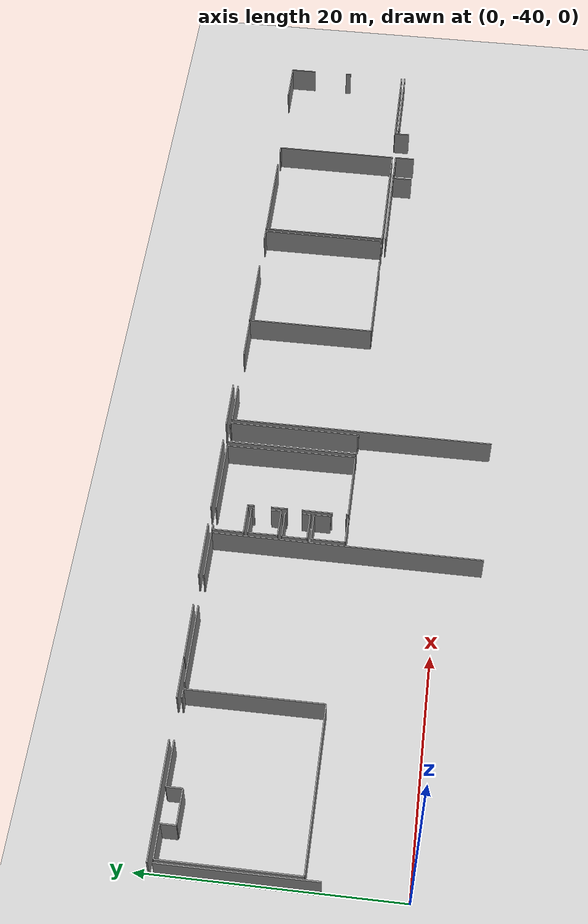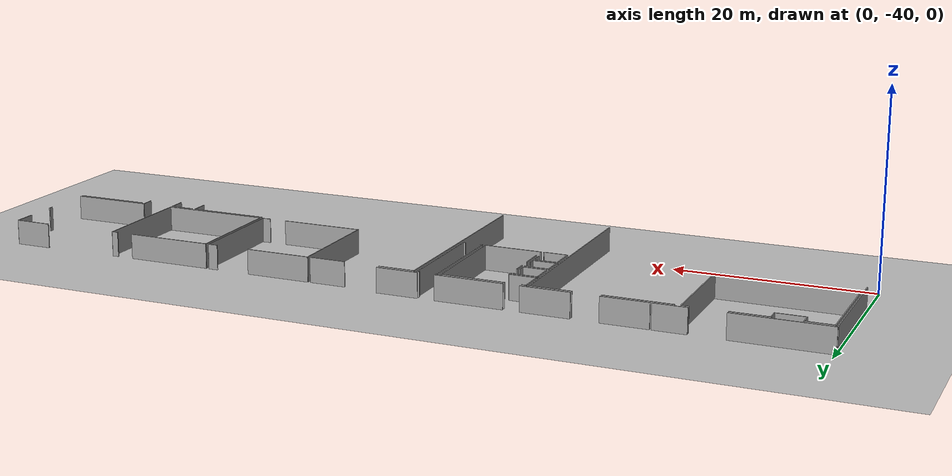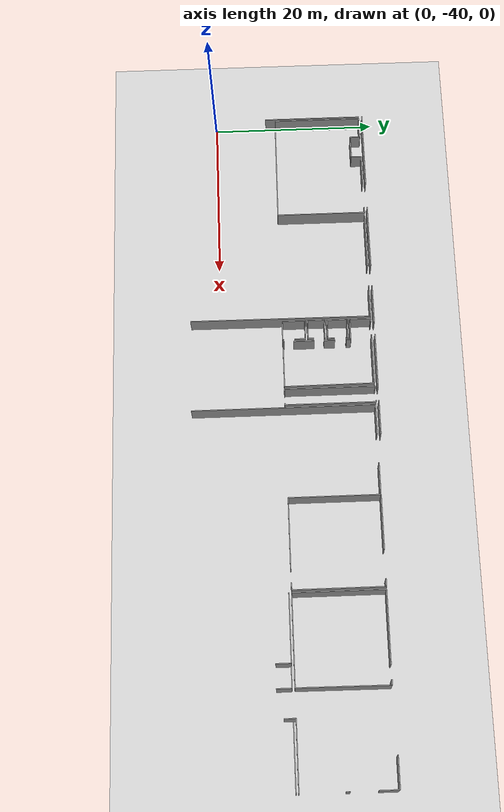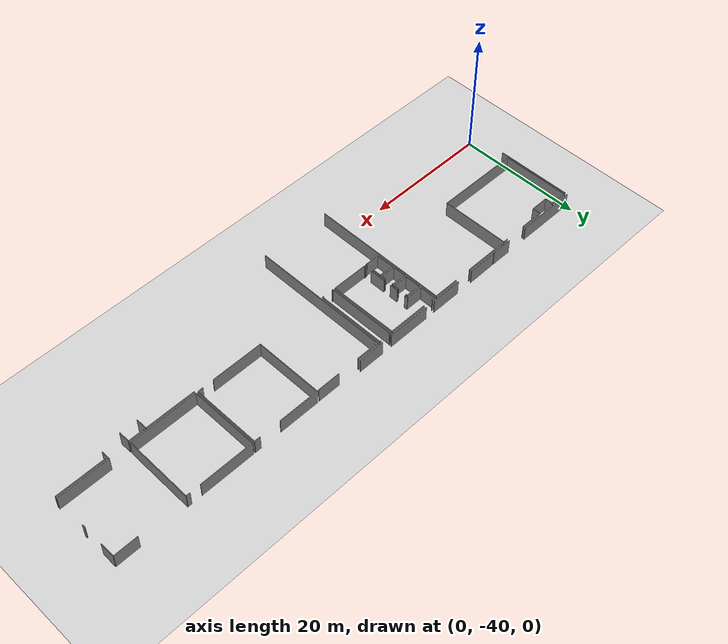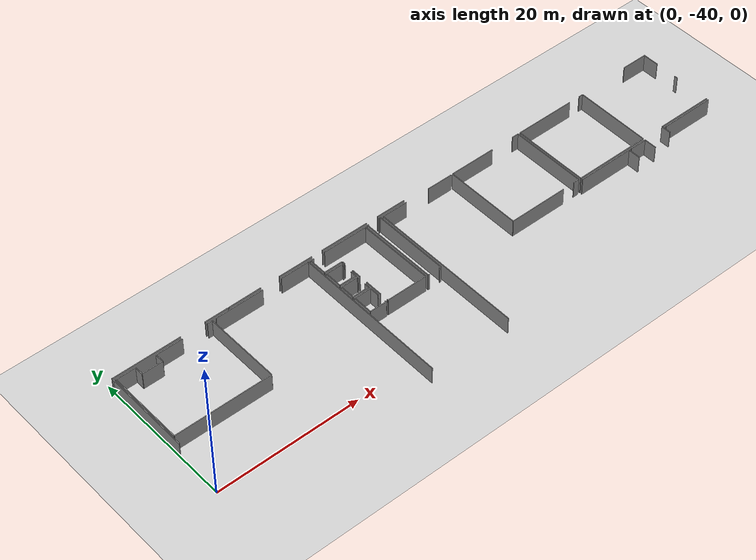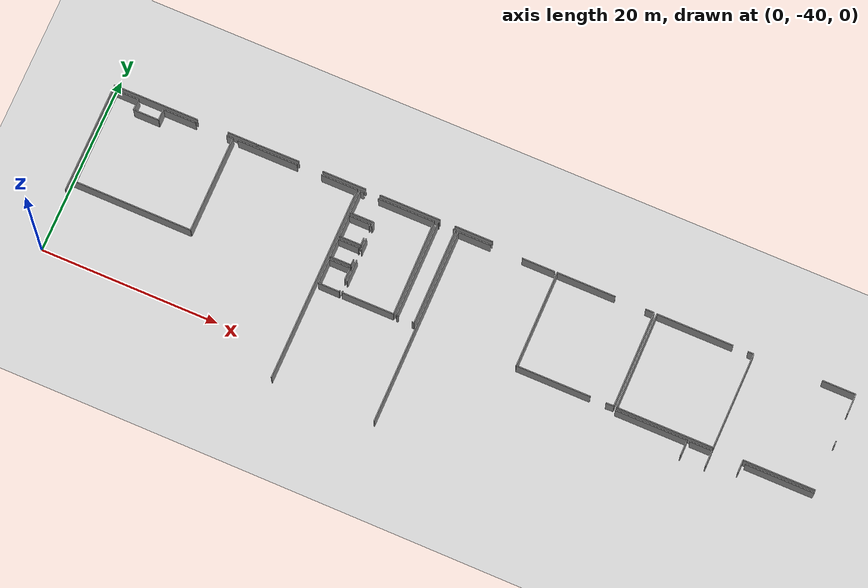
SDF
<sdf version="1.6">
 <world name="default">
  <model name="ground_plane">
   <static>1</static>
   <link name="link">
    <collision name="collision">
     <geometry><plane><normal>0 0 1</normal><size>100 100</size></plane></geometry>
     <surface><friction><ode><mu>100</mu><mu2>50</mu2></ode></friction></surface>
    </collision>
    <visual name="visual">
     <cast_shadows>0</cast_shadows>
     <geometry><plane><normal>0 0 1</normal><size>100 100</size></plane></geometry>
     <material>
      <script><uri>file://media/materials/scripts/gazebo.material</uri><name>Gazebo/Grey</name></script>
     </material>
    </visual>
   </link>
  </model>
  <model name="0510045904_A_40_1_102">
   <static>1</static>
   <link name="Wall_131">
    <collision name="Wall_131_Collision">
     <geometry><box><size>3.30442951998 0.1 2.5</size></box></geometry>
     <pose>1.65221475999 0 1.25 0 0 0</pose>
    </collision>
    <visual name="Wall_131_Visual">
     <pose>1.65221475999 0 1.25 0 0 0</pose>
     <geometry><box><size>3.30442951998 0.1 2.5</size></box></geometry>
     <material>
      <script><uri>file://media/materials/scripts/gazebo.material</uri><name>Gazebo/Grey</name></script>
      <ambient>1 1 1 1</ambient>
     </material>
    </visual>
    <pose>100.57409829 -83.65863877 0 0 0 3.14159265359</pose>
   </link>
   <link name="Wall_132">
    <collision name="Wall_132_Collision">
     <geometry><box><size>9.57761499105 0.1 2.5</size></box></geometry>
     <pose>4.78880749552 0 1.25 0 0 0</pose>
    </collision>
    <visual name="Wall_132_Visual">
     <pose>4.78880749552 0 1.25 0 0 0</pose>
     <geometry><box><size>9.57761499105 0.1 2.5</size></box></geometry>
     <material>
      <script><uri>file://media/materials/scripts/gazebo.material</uri><name>Gazebo/Grey</name></script>
      <ambient>1 1 1 1</ambient>
     </material>
    </visual>
    <pose>93.7948633311 -83.65863877 0 0 0 3.14159265359</pose>
   </link>
   <link name="Wall_177">
    <collision name="Wall_177_Collision">
     <geometry><box><size>4.24289359757 0.1 2.5</size></box></geometry>
     <pose>2.12144679879 0 1.25 0 0 0</pose>
    </collision>
    <visual name="Wall_177_Visual">
     <pose>2.12144679879 0 1.25 0 0 0</pose>
     <geometry><box><size>4.24289359757 0.1 2.5</size></box></geometry>
     <material>
      <script><uri>file://media/materials/scripts/gazebo.material</uri><name>Gazebo/Grey</name></script>
      <ambient>1 1 1 1</ambient>
     </material>
    </visual>
    <pose>127.412748994 -83.6370561276 0 0 0 3.14159265359</pose>
   </link>
   <link name="Wall_178">
    <collision name="Wall_178_Collision">
     <geometry><box><size>6.88105424861 0.1 2.5</size></box></geometry>
     <pose>3.4405271243 0 1.25 0 0 0</pose>
    </collision>
    <visual name="Wall_178_Visual">
     <pose>3.4405271243 0 1.25 0 0 0</pose>
     <geometry><box><size>6.88105424861 0.1 2.5</size></box></geometry>
     <material>
      <script><uri>file://media/materials/scripts/gazebo.material</uri><name>Gazebo/Grey</name></script>
      <ambient>1 1 1 1</ambient>
     </material>
    </visual>
    <pose>121.514593675 -83.6370561276 0 0 0 3.14159265359</pose>
   </link>
   <link name="Wall_179">
    <collision name="Wall_179_Collision">
     <geometry><box><size>4.90078332297 0.1 2.5</size></box></geometry>
     <pose>2.45039166148 0 1.25 0 0 0</pose>
    </collision>
    <visual name="Wall_179_Visual">
     <pose>2.45039166148 0 1.25 0 0 0</pose>
     <geometry><box><size>4.90078332297 0.1 2.5</size></box></geometry>
     <material>
      <script><uri>file://media/materials/scripts/gazebo.material</uri><name>Gazebo/Grey</name></script>
      <ambient>1 1 1 1</ambient>
     </material>
    </visual>
    <pose>113.037185623 -83.6370561276 0 0 0 3.14159265359</pose>
   </link>
   <link name="Wall_180">
    <collision name="Wall_180_Collision">
     <geometry><box><size>4.70484355194 0.1 2.5</size></box></geometry>
     <pose>2.35242177597 0 1.25 0 0 0</pose>
    </collision>
    <visual name="Wall_180_Visual">
     <pose>2.35242177597 0 1.25 0 0 0</pose>
     <geometry><box><size>4.70484355194 0.1 2.5</size></box></geometry>
     <material>
      <script><uri>file://media/materials/scripts/gazebo.material</uri><name>Gazebo/Grey</name></script>
      <ambient>1 1 1 1</ambient>
     </material>
    </visual>
    <pose>105.410133685 -83.6370561276 0 0 0 -3.13571005104</pose>
   </link>
   <link name="Wall_434">
    <collision name="Wall_434_Collision">
     <geometry><box><size>12.0537788668 0.1 2.5</size></box></geometry>
     <pose>6.02688943339 0 1.25 0 0 0</pose>
    </collision>
    <visual name="Wall_434_Visual">
     <pose>6.02688943339 0 1.25 0 0 0</pose>
     <geometry><box><size>12.0537788668 0.1 2.5</size></box></geometry>
     <material>
      <script><uri>file://media/materials/scripts/gazebo.material</uri><name>Gazebo/Grey</name></script>
      <ambient>1 1 1 1</ambient>
     </material>
    </visual>
    <pose>84.2543197024 -84.0323993551 0 0 0 -1.57079632679</pose>
   </link>
   <link name="Wall_461">
    <collision name="Wall_461_Collision">
     <geometry><box><size>10.862417002 0.1 2.5</size></box></geometry>
     <pose>5.43120850102 0 1.25 0 0 0</pose>
    </collision>
    <visual name="Wall_461_Visual">
     <pose>5.43120850102 0 1.25 0 0 0</pose>
     <geometry><box><size>10.862417002 0.1 2.5</size></box></geometry>
     <material>
      <script><uri>file://media/materials/scripts/gazebo.material</uri><name>Gazebo/Grey</name></script>
      <ambient>1 1 1 1</ambient>
     </material>
    </visual>
    <pose>98.0288699582 -94.9006563662 0 0 0 1.57079632679</pose>
   </link>
   <link name="Wall_462">
    <collision name="Wall_462_Collision">
     <geometry><box><size>0.73000114261 0.1 2.5</size></box></geometry>
     <pose>0.365000571305 0 1.25 0 0 0</pose>
    </collision>
    <visual name="Wall_462_Visual">
     <pose>0.365000571305 0 1.25 0 0 0</pose>
     <geometry><box><size>0.73000114261 0.1 2.5</size></box></geometry>
     <material>
      <script><uri>file://media/materials/scripts/gazebo.material</uri><name>Gazebo/Grey</name></script>
      <ambient>1 1 1 1</ambient>
     </material>
    </visual>
    <pose>98.0288699582 -84.0382393642 0 0 0 3.14159265359</pose>
   </link>
   <link name="Wall_463">
    <collision name="Wall_463_Collision">
     <geometry><box><size>3.70840580446 0.1 2.5</size></box></geometry>
     <pose>1.85420290223 0 1.25 0 0 0</pose>
    </collision>
    <visual name="Wall_463_Visual">
     <pose>1.85420290223 0 1.25 0 0 0</pose>
     <geometry><box><size>3.70840580446 0.1 2.5</size></box></geometry>
     <material>
      <script><uri>file://media/materials/scripts/gazebo.material</uri><name>Gazebo/Grey</name></script>
      <ambient>1 1 1 1</ambient>
     </material>
    </visual>
    <pose>93.7656632854 -84.0382393642 0 0 0 3.14159265359</pose>
   </link>
   <link name="Wall_464">
    <collision name="Wall_464_Collision">
     <geometry><box><size>1.25560196529 0.1 2.5</size></box></geometry>
     <pose>0.627800982645 0 1.25 0 0 0</pose>
    </collision>
    <visual name="Wall_464_Visual">
     <pose>0.627800982645 0 1.25 0 0 0</pose>
     <geometry><box><size>1.25560196529 0.1 2.5</size></box></geometry>
     <material>
      <script><uri>file://media/materials/scripts/gazebo.material</uri><name>Gazebo/Grey</name></script>
      <ambient>1 1 1 1</ambient>
     </material>
    </visual>
    <pose>90.0572574809 -84.0382393642 0 0 0 -1.57079632679</pose>
   </link>
   <link name="Wall_465">
    <collision name="Wall_465_Collision">
     <geometry><box><size>2.86160447903 0.1 2.5</size></box></geometry>
     <pose>1.43080223952 0 1.25 0 0 0</pose>
    </collision>
    <visual name="Wall_465_Visual">
     <pose>1.43080223952 0 1.25 0 0 0</pose>
     <geometry><box><size>2.86160447903 0.1 2.5</size></box></geometry>
     <material>
      <script><uri>file://media/materials/scripts/gazebo.material</uri><name>Gazebo/Grey</name></script>
      <ambient>1 1 1 1</ambient>
     </material>
    </visual>
    <pose>90.0572574809 -85.2938413295 0 0 0 3.14159265359</pose>
   </link>
   <link name="Wall_466">
    <collision name="Wall_466_Collision">
     <geometry><box><size>1.22640191959 0.1 2.5</size></box></geometry>
     <pose>0.613200959793 0 1.25 0 0 0</pose>
    </collision>
    <visual name="Wall_466_Visual">
     <pose>0.613200959793 0 1.25 0 0 0</pose>
     <geometry><box><size>1.22640191959 0.1 2.5</size></box></geometry>
     <material>
      <script><uri>file://media/materials/scripts/gazebo.material</uri><name>Gazebo/Grey</name></script>
      <ambient>1 1 1 1</ambient>
     </material>
    </visual>
    <pose>87.1956530019 -85.2938413295 0 0 0 1.57079632679</pose>
   </link>
   <link name="Wall_467">
    <collision name="Wall_467_Collision">
     <geometry><box><size>2.69376769459 0.1 2.5</size></box></geometry>
     <pose>1.3468838473 0 1.25 0 0 0</pose>
    </collision>
    <visual name="Wall_467_Visual">
     <pose>1.3468838473 0 1.25 0 0 0</pose>
     <geometry><box><size>2.69376769459 0.1 2.5</size></box></geometry>
     <material>
      <script><uri>file://media/materials/scripts/gazebo.material</uri><name>Gazebo/Grey</name></script>
      <ambient>1 1 1 1</ambient>
     </material>
    </visual>
    <pose>87.1956530019 -84.0674394099 0 0 0 3.14159265359</pose>
   </link>
   <link name="Wall_468">
    <collision name="Wall_468_Collision">
     <geometry><box><size>10.7781177397 0.1 2.5</size></box></geometry>
     <pose>5.38905886983 0 1.25 0 0 0</pose>
    </collision>
    <visual name="Wall_468_Visual">
     <pose>5.38905886983 0 1.25 0 0 0</pose>
     <geometry><box><size>10.7781177397 0.1 2.5</size></box></geometry>
     <material>
      <script><uri>file://media/materials/scripts/gazebo.material</uri><name>Gazebo/Grey</name></script>
      <ambient>1 1 1 1</ambient>
     </material>
    </visual>
    <pose>84.5018853073 -84.0674394099 0 0 0 -1.57079632679</pose>
   </link>
   <link name="Wall_469">
    <collision name="Wall_469_Collision">
     <geometry><box><size>13.5270968678 0.1 2.5</size></box></geometry>
     <pose>6.76354843389 0 1.25 0 0 0</pose>
    </collision>
    <visual name="Wall_469_Visual">
     <pose>6.76354843389 0 1.25 0 0 0</pose>
     <geometry><box><size>13.5270968678 0.1 2.5</size></box></geometry>
     <material>
      <script><uri>file://media/materials/scripts/gazebo.material</uri><name>Gazebo/Grey</name></script>
      <ambient>1 1 1 1</ambient>
     </material>
    </visual>
    <pose>84.5018853073 -94.8455571496 0 0 0 -0.00407325899847</pose>
   </link>
   <link name="Wall_479">
    <collision name="Wall_479_Collision">
     <geometry><box><size>6.79777063999 0.1 2.5</size></box></geometry>
     <pose>3.39888531999 0 1.25 0 0 0</pose>
    </collision>
    <visual name="Wall_479_Visual">
     <pose>3.39888531999 0 1.25 0 0 0</pose>
     <geometry><box><size>6.79777063999 0.1 2.5</size></box></geometry>
     <material>
      <script><uri>file://media/materials/scripts/gazebo.material</uri><name>Gazebo/Grey</name></script>
      <ambient>1 1 1 1</ambient>
     </material>
    </visual>
    <pose>98.5778308175 -84.0323993551 0 0 0 0.0</pose>
   </link>
   <link name="Wall_480">
    <collision name="Wall_480_Collision">
     <geometry><box><size>4.08800639862 0.1 2.5</size></box></geometry>
     <pose>2.04400319931 0 1.25 0 0 0</pose>
    </collision>
    <visual name="Wall_480_Visual">
     <pose>2.04400319931 0 1.25 0 0 0</pose>
     <geometry><box><size>4.08800639862 0.1 2.5</size></box></geometry>
     <material>
      <script><uri>file://media/materials/scripts/gazebo.material</uri><name>Gazebo/Grey</name></script>
      <ambient>1 1 1 1</ambient>
     </material>
    </visual>
    <pose>108.133355339 -84.0323993551 0 0 0 0.0</pose>
   </link>
   <link name="Wall_481">
    <collision name="Wall_481_Collision">
     <geometry><box><size>21.993609879 0.1 2.5</size></box></geometry>
     <pose>10.9968049395 0 1.25 0 0 0</pose>
    </collision>
    <visual name="Wall_481_Visual">
     <pose>10.9968049395 0 1.25 0 0 0</pose>
     <geometry><box><size>21.993609879 0.1 2.5</size></box></geometry>
     <material>
      <script><uri>file://media/materials/scripts/gazebo.material</uri><name>Gazebo/Grey</name></script>
      <ambient>1 1 1 1</ambient>
     </material>
    </visual>
    <pose>112.221361738 -84.0323993551 0 0 0 -1.5743059755</pose>
   </link>
   <link name="Wall_482">
    <collision name="Wall_482_Collision">
     <geometry><box><size>10.8636865692 0.1 2.5</size></box></geometry>
     <pose>5.43184328462 0 1.25 0 0 0</pose>
    </collision>
    <visual name="Wall_482_Visual">
     <pose>5.43184328462 0 1.25 0 0 0</pose>
     <geometry><box><size>10.8636865692 0.1 2.5</size></box></geometry>
     <material>
      <script><uri>file://media/materials/scripts/gazebo.material</uri><name>Gazebo/Grey</name></script>
      <ambient>1 1 1 1</ambient>
     </material>
    </visual>
    <pose>121.365038658 -94.8455571496 0 0 0 1.57079632679</pose>
   </link>
   <link name="Wall_483">
    <collision name="Wall_483_Collision">
     <geometry><box><size>0.14269935379 0.1 2.5</size></box></geometry>
     <pose>0.0713496768951 0 1.25 0 0 0</pose>
    </collision>
    <visual name="Wall_483_Visual">
     <pose>0.0713496768951 0 1.25 0 0 0</pose>
     <geometry><box><size>0.14269935379 0.1 2.5</size></box></geometry>
     <material>
      <script><uri>file://media/materials/scripts/gazebo.material</uri><name>Gazebo/Grey</name></script>
      <ambient>1 1 1 1</ambient>
     </material>
    </visual>
    <pose>121.365038658 -83.9818705803 0 0 0 0.0</pose>
   </link>
   <link name="Wall_484">
    <collision name="Wall_484_Collision">
     <geometry><box><size>0.230553404344 0.1 2.5</size></box></geometry>
     <pose>0.115276702172 0 1.25 0 0 0</pose>
    </collision>
    <visual name="Wall_484_Visual">
     <pose>0.115276702172 0 1.25 0 0 0</pose>
     <geometry><box><size>0.230553404344 0.1 2.5</size></box></geometry>
     <material>
      <script><uri>file://media/materials/scripts/gazebo.material</uri><name>Gazebo/Grey</name></script>
      <ambient>1 1 1 1</ambient>
     </material>
    </visual>
    <pose>123.131260553 -83.9818705803 0 0 0 0.0</pose>
   </link>
   <link name="Wall_485">
    <collision name="Wall_485_Collision">
     <geometry><box><size>10.8827300773 0.1 2.5</size></box></geometry>
     <pose>5.44136503866 0 1.25 0 0 0</pose>
    </collision>
    <visual name="Wall_485_Visual">
     <pose>5.44136503866 0 1.25 0 0 0</pose>
     <geometry><box><size>10.8827300773 0.1 2.5</size></box></geometry>
     <material>
      <script><uri>file://media/materials/scripts/gazebo.material</uri><name>Gazebo/Grey</name></script>
      <ambient>1 1 1 1</ambient>
     </material>
    </visual>
    <pose>123.361813958 -83.9818705803 0 0 0 -1.57079632679</pose>
   </link>
   <link name="Wall_486">
    <collision name="Wall_486_Collision">
     <geometry><box><size>0.230553404344 0.1 2.5</size></box></geometry>
     <pose>0.115276702172 0 1.25 0 0 0</pose>
    </collision>
    <visual name="Wall_486_Visual">
     <pose>0.115276702172 0 1.25 0 0 0</pose>
     <geometry><box><size>0.230553404344 0.1 2.5</size></box></geometry>
     <material>
      <script><uri>file://media/materials/scripts/gazebo.material</uri><name>Gazebo/Grey</name></script>
      <ambient>1 1 1 1</ambient>
     </material>
    </visual>
    <pose>123.361813958 -94.8646006576 0 0 0 3.14159265359</pose>
   </link>
   <link name="Wall_487">
    <collision name="Wall_487_Collision">
     <geometry><box><size>0.212112577381 0.1 2.5</size></box></geometry>
     <pose>0.106056288691 0 1.25 0 0 0</pose>
    </collision>
    <visual name="Wall_487_Visual">
     <pose>0.106056288691 0 1.25 0 0 0</pose>
     <geometry><box><size>0.212112577381 0.1 2.5</size></box></geometry>
     <material>
      <script><uri>file://media/materials/scripts/gazebo.material</uri><name>Gazebo/Grey</name></script>
      <ambient>1 1 1 1</ambient>
     </material>
    </visual>
    <pose>121.576294641 -94.8646006576 0 0 0 3.05169140936</pose>
   </link>
   <link name="Wall_517">
    <collision name="Wall_517_Collision">
     <geometry><box><size>5.81461779679 0.1 2.5</size></box></geometry>
     <pose>2.9073088984 0 1.25 0 0 0</pose>
    </collision>
    <visual name="Wall_517_Visual">
     <pose>2.9073088984 0 1.25 0 0 0</pose>
     <geometry><box><size>5.81461779679 0.1 2.5</size></box></geometry>
     <material>
      <script><uri>file://media/materials/scripts/gazebo.material</uri><name>Gazebo/Grey</name></script>
      <ambient>1 1 1 1</ambient>
     </material>
    </visual>
    <pose>121.032158137 -94.8346388716 0 0 0 3.14159265359</pose>
   </link>
   <link name="Wall_518">
    <collision name="Wall_518_Collision">
     <geometry><box><size>0.177739408636 0.1 2.5</size></box></geometry>
     <pose>0.0888697043178 0 1.25 0 0 0</pose>
    </collision>
    <visual name="Wall_518_Visual">
     <pose>0.0888697043178 0 1.25 0 0 0</pose>
     <geometry><box><size>0.177739408636 0.1 2.5</size></box></geometry>
     <material>
      <script><uri>file://media/materials/scripts/gazebo.material</uri><name>Gazebo/Grey</name></script>
      <ambient>1 1 1 1</ambient>
     </material>
    </visual>
    <pose>115.21754034 -94.8346388716 0 0 0 1.57079632679</pose>
   </link>
   <link name="Wall_519">
    <collision name="Wall_519_Collision">
     <geometry><box><size>2.51145784402 0.1 2.5</size></box></geometry>
     <pose>1.25572892201 0 1.25 0 0 0</pose>
    </collision>
    <visual name="Wall_519_Visual">
     <pose>1.25572892201 0 1.25 0 0 0</pose>
     <geometry><box><size>2.51145784402 0.1 2.5</size></box></geometry>
     <material>
      <script><uri>file://media/materials/scripts/gazebo.material</uri><name>Gazebo/Grey</name></script>
      <ambient>1 1 1 1</ambient>
     </material>
    </visual>
    <pose>115.21754034 -93.535109881 0 0 0 1.57079632679</pose>
   </link>
   <link name="Wall_520">
    <collision name="Wall_520_Collision">
     <geometry><box><size>1.32111163304 0.1 2.5</size></box></geometry>
     <pose>0.660555816522 0 1.25 0 0 0</pose>
    </collision>
    <visual name="Wall_520_Visual">
     <pose>0.660555816522 0 1.25 0 0 0</pose>
     <geometry><box><size>1.32111163304 0.1 2.5</size></box></geometry>
     <material>
      <script><uri>file://media/materials/scripts/gazebo.material</uri><name>Gazebo/Grey</name></script>
      <ambient>1 1 1 1</ambient>
     </material>
    </visual>
    <pose>115.21754034 -89.8477788922 0 0 0 1.57079632679</pose>
   </link>
   <link name="Wall_521">
    <collision name="Wall_521_Collision">
     <geometry><box><size>0.51747559257 0.1 2.5</size></box></geometry>
     <pose>0.258737796285 0 1.25 0 0 0</pose>
    </collision>
    <visual name="Wall_521_Visual">
     <pose>0.258737796285 0 1.25 0 0 0</pose>
     <geometry><box><size>0.51747559257 0.1 2.5</size></box></geometry>
     <material>
      <script><uri>file://media/materials/scripts/gazebo.material</uri><name>Gazebo/Grey</name></script>
      <ambient>1 1 1 1</ambient>
     </material>
    </visual>
    <pose>115.21754034 -87.1204946234 0 0 0 1.57079632679</pose>
   </link>
   <link name="Wall_522">
    <collision name="Wall_522_Collision">
     <geometry><box><size>2.67523201341 0.1 2.5</size></box></geometry>
     <pose>1.3376160067 0 1.25 0 0 0</pose>
    </collision>
    <visual name="Wall_522_Visual">
     <pose>1.3376160067 0 1.25 0 0 0</pose>
     <geometry><box><size>2.67523201341 0.1 2.5</size></box></geometry>
     <material>
      <script><uri>file://media/materials/scripts/gazebo.material</uri><name>Gazebo/Grey</name></script>
      <ambient>1 1 1 1</ambient>
     </material>
    </visual>
    <pose>115.21754034 -86.6030190308 0 0 0 3.14159265359</pose>
   </link>
   <link name="Wall_523">
    <collision name="Wall_523_Collision">
     <geometry><box><size>2.55436921553 0.1 2.5</size></box></geometry>
     <pose>1.27718460777 0 1.25 0 0 0</pose>
    </collision>
    <visual name="Wall_523_Visual">
     <pose>1.27718460777 0 1.25 0 0 0</pose>
     <geometry><box><size>2.55436921553 0.1 2.5</size></box></geometry>
     <material>
      <script><uri>file://media/materials/scripts/gazebo.material</uri><name>Gazebo/Grey</name></script>
      <ambient>1 1 1 1</ambient>
     </material>
    </visual>
    <pose>112.542308327 -86.6030190308 0 0 0 1.57079632679</pose>
   </link>
   <link name="Wall_524">
    <collision name="Wall_524_Collision">
     <geometry><box><size>0.458821587721 0.1 2.5</size></box></geometry>
     <pose>0.22941079386 0 1.25 0 0 0</pose>
    </collision>
    <visual name="Wall_524_Visual">
     <pose>0.22941079386 0 1.25 0 0 0</pose>
     <geometry><box><size>0.458821587721 0.1 2.5</size></box></geometry>
     <material>
      <script><uri>file://media/materials/scripts/gazebo.material</uri><name>Gazebo/Grey</name></script>
      <ambient>1 1 1 1</ambient>
     </material>
    </visual>
    <pose>112.542308327 -84.0486498153 0 0 0 0.0</pose>
   </link>
   <link name="Wall_525">
    <collision name="Wall_525_Collision">
     <geometry><box><size>6.3366638313 0.1 2.5</size></box></geometry>
     <pose>3.16833191565 0 1.25 0 0 0</pose>
    </collision>
    <visual name="Wall_525_Visual">
     <pose>3.16833191565 0 1.25 0 0 0</pose>
     <geometry><box><size>6.3366638313 0.1 2.5</size></box></geometry>
     <material>
      <script><uri>file://media/materials/scripts/gazebo.material</uri><name>Gazebo/Grey</name></script>
      <ambient>1 1 1 1</ambient>
     </material>
    </visual>
    <pose>114.626937677 -84.0486498153 0 0 0 0.0</pose>
   </link>
   <link name="Wall_526">
    <collision name="Wall_526_Collision">
     <geometry><box><size>10.7862069299 0.1 2.5</size></box></geometry>
     <pose>5.39310346495 0 1.25 0 0 0</pose>
    </collision>
    <visual name="Wall_526_Visual">
     <pose>5.39310346495 0 1.25 0 0 0</pose>
     <geometry><box><size>10.7862069299 0.1 2.5</size></box></geometry>
     <material>
      <script><uri>file://media/materials/scripts/gazebo.material</uri><name>Gazebo/Grey</name></script>
      <ambient>1 1 1 1</ambient>
     </material>
    </visual>
    <pose>120.963601508 -84.0486498153 0 0 0 -1.56444033056</pose>
   </link>
   <link name="Wall_527">
    <collision name="Wall_527_Collision">
     <geometry><box><size>2.38094633539 0.1 2.5</size></box></geometry>
     <pose>1.1904731677 0 1.25 0 0 0</pose>
    </collision>
    <visual name="Wall_527_Visual">
     <pose>1.1904731677 0 1.25 0 0 0</pose>
     <geometry><box><size>2.38094633539 0.1 2.5</size></box></geometry>
     <material>
      <script><uri>file://media/materials/scripts/gazebo.material</uri><name>Gazebo/Grey</name></script>
      <ambient>1 1 1 1</ambient>
     </material>
    </visual>
    <pose>112.571508373 -89.3734685846 0 0 0 0.0</pose>
   </link>
   <link name="Wall_528">
    <collision name="Wall_528_Collision">
     <geometry><box><size>0.825472596392 0.1 2.5</size></box></geometry>
     <pose>0.412736298196 0 1.25 0 0 0</pose>
    </collision>
    <visual name="Wall_528_Visual">
     <pose>0.412736298196 0 1.25 0 0 0</pose>
     <geometry><box><size>0.825472596392 0.1 2.5</size></box></geometry>
     <material>
      <script><uri>file://media/materials/scripts/gazebo.material</uri><name>Gazebo/Grey</name></script>
      <ambient>1 1 1 1</ambient>
     </material>
    </visual>
    <pose>114.952454708 -89.3734685846 0 0 0 1.57079632679</pose>
   </link>
   <link name="Wall_529">
    <collision name="Wall_529_Collision">
     <geometry><box><size>0.230553404344 0.1 2.5</size></box></geometry>
     <pose>0.115276702172 0 1.25 0 0 0</pose>
    </collision>
    <visual name="Wall_529_Visual">
     <pose>0.115276702172 0 1.25 0 0 0</pose>
     <geometry><box><size>0.230553404344 0.1 2.5</size></box></geometry>
     <material>
      <script><uri>file://media/materials/scripts/gazebo.material</uri><name>Gazebo/Grey</name></script>
      <ambient>1 1 1 1</ambient>
     </material>
    </visual>
    <pose>114.952454708 -87.1656912159 0 0 0 1.57079632679</pose>
   </link>
   <link name="Wall_530">
    <collision name="Wall_530_Collision">
     <geometry><box><size>2.39998984346 0.1 2.5</size></box></geometry>
     <pose>1.19999492173 0 1.25 0 0 0</pose>
    </collision>
    <visual name="Wall_530_Visual">
     <pose>1.19999492173 0 1.25 0 0 0</pose>
     <geometry><box><size>2.39998984346 0.1 2.5</size></box></geometry>
     <material>
      <script><uri>file://media/materials/scripts/gazebo.material</uri><name>Gazebo/Grey</name></script>
      <ambient>1 1 1 1</ambient>
     </material>
    </visual>
    <pose>114.952454708 -86.9351378115 0 0 0 3.14159265359</pose>
   </link>
   <link name="Wall_531">
    <collision name="Wall_531_Collision">
     <geometry><box><size>2.43840513737 0.1 2.5</size></box></geometry>
     <pose>1.21920256868 0 1.25 0 0 0</pose>
    </collision>
    <visual name="Wall_531_Visual">
     <pose>1.21920256868 0 1.25 0 0 0</pose>
     <geometry><box><size>2.43840513737 0.1 2.5</size></box></geometry>
     <material>
      <script><uri>file://media/materials/scripts/gazebo.material</uri><name>Gazebo/Grey</name></script>
      <ambient>1 1 1 1</ambient>
     </material>
    </visual>
    <pose>112.552464865 -86.9351378115 0 0 0 -1.56298642623</pose>
   </link>
   <link name="Wall_532">
    <collision name="Wall_532_Collision">
     <geometry><box><size>2.35200020313 0.1 2.5</size></box></geometry>
     <pose>1.17600010157 0 1.25 0 0 0</pose>
    </collision>
    <visual name="Wall_532_Visual">
     <pose>1.17600010157 0 1.25 0 0 0</pose>
     <geometry><box><size>2.35200020313 0.1 2.5</size></box></geometry>
     <material>
      <script><uri>file://media/materials/scripts/gazebo.material</uri><name>Gazebo/Grey</name></script>
      <ambient>1 1 1 1</ambient>
     </material>
    </visual>
    <pose>114.873995455 -91.7640636307 0 0 0 3.14159265359</pose>
   </link>
   <link name="Wall_533">
    <collision name="Wall_533_Collision">
     <geometry><box><size>2.0470501606 0.1 2.5</size></box></geometry>
     <pose>1.0235250803 0 1.25 0 0 0</pose>
    </collision>
    <visual name="Wall_533_Visual">
     <pose>1.0235250803 0 1.25 0 0 0</pose>
     <geometry><box><size>2.0470501606 0.1 2.5</size></box></geometry>
     <material>
      <script><uri>file://media/materials/scripts/gazebo.material</uri><name>Gazebo/Grey</name></script>
      <ambient>1 1 1 1</ambient>
     </material>
    </visual>
    <pose>112.521995252 -91.7640636307 0 0 0 1.57079632679</pose>
   </link>
   <link name="Wall_534">
    <collision name="Wall_534_Collision">
     <geometry><box><size>2.38094633539 0.1 2.5</size></box></geometry>
     <pose>1.1904731677 0 1.25 0 0 0</pose>
    </collision>
    <visual name="Wall_534_Visual">
     <pose>1.1904731677 0 1.25 0 0 0</pose>
     <geometry><box><size>2.38094633539 0.1 2.5</size></box></geometry>
     <material>
      <script><uri>file://media/materials/scripts/gazebo.material</uri><name>Gazebo/Grey</name></script>
      <ambient>1 1 1 1</ambient>
     </material>
    </visual>
    <pose>112.521995252 -89.7170134701 0 0 0 0.0</pose>
   </link>
   <link name="Wall_535">
    <collision name="Wall_535_Collision">
     <geometry><box><size>0.145238488199 0.1 2.5</size></box></geometry>
     <pose>0.0726192440997 0 1.25 0 0 0</pose>
    </collision>
    <visual name="Wall_535_Visual">
     <pose>0.0726192440997 0 1.25 0 0 0</pose>
     <geometry><box><size>0.145238488199 0.1 2.5</size></box></geometry>
     <material>
      <script><uri>file://media/materials/scripts/gazebo.material</uri><name>Gazebo/Grey</name></script>
      <ambient>1 1 1 1</ambient>
     </material>
    </visual>
    <pose>114.902941587 -89.7170134701 0 0 0 -1.57079632679</pose>
   </link>
   <link name="Wall_536">
    <collision name="Wall_536_Collision">
     <geometry><box><size>0.687445542523 0.1 2.5</size></box></geometry>
     <pose>0.343722771262 0 1.25 0 0 0</pose>
    </collision>
    <visual name="Wall_536_Visual">
     <pose>0.343722771262 0 1.25 0 0 0</pose>
     <geometry><box><size>0.687445542523 0.1 2.5</size></box></geometry>
     <material>
      <script><uri>file://media/materials/scripts/gazebo.material</uri><name>Gazebo/Grey</name></script>
      <ambient>1 1 1 1</ambient>
     </material>
    </visual>
    <pose>114.902941587 -91.0772277731 0 0 0 -1.6129155796</pose>
   </link>
   <link name="Wall_537">
    <collision name="Wall_537_Collision">
     <geometry><box><size>2.77146520751 0.1 2.5</size></box></geometry>
     <pose>1.38573260376 0 1.25 0 0 0</pose>
    </collision>
    <visual name="Wall_537_Visual">
     <pose>1.38573260376 0 1.25 0 0 0</pose>
     <geometry><box><size>2.77146520751 0.1 2.5</size></box></geometry>
     <material>
      <script><uri>file://media/materials/scripts/gazebo.material</uri><name>Gazebo/Grey</name></script>
      <ambient>1 1 1 1</ambient>
     </material>
    </visual>
    <pose>112.542308327 -94.8503815049 0 0 0 1.57079632679</pose>
   </link>
   <link name="Wall_538">
    <collision name="Wall_538_Collision">
     <geometry><box><size>2.37078979776 0.1 2.5</size></box></geometry>
     <pose>1.18539489888 0 1.25 0 0 0</pose>
    </collision>
    <visual name="Wall_538_Visual">
     <pose>1.18539489888 0 1.25 0 0 0</pose>
     <geometry><box><size>2.37078979776 0.1 2.5</size></box></geometry>
     <material>
      <script><uri>file://media/materials/scripts/gazebo.material</uri><name>Gazebo/Grey</name></script>
      <ambient>1 1 1 1</ambient>
     </material>
    </visual>
    <pose>112.542308327 -92.0789162974 0 0 0 0.0</pose>
   </link>
   <link name="Wall_539">
    <collision name="Wall_539_Collision">
     <geometry><box><size>1.35234298628 0.1 2.5</size></box></geometry>
     <pose>0.676171493138 0 1.25 0 0 0</pose>
    </collision>
    <visual name="Wall_539_Visual">
     <pose>0.676171493138 0 1.25 0 0 0</pose>
     <geometry><box><size>1.35234298628 0.1 2.5</size></box></geometry>
     <material>
      <script><uri>file://media/materials/scripts/gazebo.material</uri><name>Gazebo/Grey</name></script>
      <ambient>1 1 1 1</ambient>
     </material>
    </visual>
    <pose>114.913098125 -92.0789162974 0 0 0 -1.57079632679</pose>
   </link>
   <link name="Wall_540">
    <collision name="Wall_540_Collision">
     <geometry><box><size>0.165551563472 0.1 2.5</size></box></geometry>
     <pose>0.082775781736 0 1.25 0 0 0</pose>
    </collision>
    <visual name="Wall_540_Visual">
     <pose>0.082775781736 0 1.25 0 0 0</pose>
     <geometry><box><size>0.165551563472 0.1 2.5</size></box></geometry>
     <material>
      <script><uri>file://media/materials/scripts/gazebo.material</uri><name>Gazebo/Grey</name></script>
      <ambient>1 1 1 1</ambient>
     </material>
    </visual>
    <pose>114.913098125 -94.7076821512 0 0 0 -1.57079632679</pose>
   </link>
   <link name="Wall_541">
    <collision name="Wall_541_Collision">
     <geometry><box><size>2.37089993223 0.1 2.5</size></box></geometry>
     <pose>1.18544996611 0 1.25 0 0 0</pose>
    </collision>
    <visual name="Wall_541_Visual">
     <pose>1.18544996611 0 1.25 0 0 0</pose>
     <geometry><box><size>2.37089993223 0.1 2.5</size></box></geometry>
     <material>
      <script><uri>file://media/materials/scripts/gazebo.material</uri><name>Gazebo/Grey</name></script>
      <ambient>1 1 1 1</ambient>
     </material>
    </visual>
    <pose>114.913098125 -94.8732337146 0 0 0 3.13195388174</pose>
   </link>
   <link name="Wall_544">
    <collision name="Wall_544_Collision">
     <geometry><box><size>3.67285792273 0.1 2.5</size></box></geometry>
     <pose>1.83642896137 0 1.25 0 0 0</pose>
    </collision>
    <visual name="Wall_544_Visual">
     <pose>1.83642896137 0 1.25 0 0 0</pose>
     <geometry><box><size>3.67285792273 0.1 2.5</size></box></geometry>
     <material>
      <script><uri>file://media/materials/scripts/gazebo.material</uri><name>Gazebo/Grey</name></script>
      <ambient>1 1 1 1</ambient>
     </material>
    </visual>
    <pose>134.616527226 -84.0643924486 0 0 0 3.14159265359</pose>
   </link>
   <link name="Wall_545">
    <collision name="Wall_545_Collision">
     <geometry><box><size>3.65635354908 0.1 2.5</size></box></geometry>
     <pose>1.82817677454 0 1.25 0 0 0</pose>
    </collision>
    <visual name="Wall_545_Visual">
     <pose>1.82817677454 0 1.25 0 0 0</pose>
     <geometry><box><size>3.65635354908 0.1 2.5</size></box></geometry>
     <material>
      <script><uri>file://media/materials/scripts/gazebo.material</uri><name>Gazebo/Grey</name></script>
      <ambient>1 1 1 1</ambient>
     </material>
    </visual>
    <pose>127.37999416 -84.0643924486 0 0 0 3.14159265359</pose>
   </link>
   <link name="Wall_546">
    <collision name="Wall_546_Collision">
     <geometry><box><size>22.0031231353 0.1 2.5</size></box></geometry>
     <pose>11.0015615677 0 1.25 0 0 0</pose>
    </collision>
    <visual name="Wall_546_Visual">
     <pose>11.0015615677 0 1.25 0 0 0</pose>
     <geometry><box><size>22.0031231353 0.1 2.5</size></box></geometry>
     <material>
      <script><uri>file://media/materials/scripts/gazebo.material</uri><name>Gazebo/Grey</name></script>
      <ambient>1 1 1 1</ambient>
     </material>
    </visual>
    <pose>123.723640611 -84.0643924486 0 0 0 -1.57079632679</pose>
   </link>
   <link name="Wall_561">
    <collision name="Wall_561_Collision">
     <geometry><box><size>10.7913212386 0.1 2.5</size></box></geometry>
     <pose>5.39566061929 0 1.25 0 0 0</pose>
    </collision>
    <visual name="Wall_561_Visual">
     <pose>5.39566061929 0 1.25 0 0 0</pose>
     <geometry><box><size>10.7913212386 0.1 2.5</size></box></geometry>
     <material>
      <script><uri>file://media/materials/scripts/gazebo.material</uri><name>Gazebo/Grey</name></script>
      <ambient>1 1 1 1</ambient>
     </material>
    </visual>
    <pose>145.788718626 -94.8346388716 0 0 0 1.57079632679</pose>
   </link>
   <link name="Wall_562">
    <collision name="Wall_562_Collision">
     <geometry><box><size>0.96487107545 0.1 2.5</size></box></geometry>
     <pose>0.482435537725 0 1.25 0 0 0</pose>
    </collision>
    <visual name="Wall_562_Visual">
     <pose>0.482435537725 0 1.25 0 0 0</pose>
     <geometry><box><size>0.96487107545 0.1 2.5</size></box></geometry>
     <material>
      <script><uri>file://media/materials/scripts/gazebo.material</uri><name>Gazebo/Grey</name></script>
      <ambient>1 1 1 1</ambient>
     </material>
    </visual>
    <pose>145.788718626 -84.043317633 0 0 0 3.14159265359</pose>
   </link>
   <link name="Wall_563">
    <collision name="Wall_563_Collision">
     <geometry><box><size>6.54817372758 0.1 2.5</size></box></geometry>
     <pose>3.27408686379 0 1.25 0 0 0</pose>
    </collision>
    <visual name="Wall_563_Visual">
     <pose>3.27408686379 0 1.25 0 0 0</pose>
     <geometry><box><size>6.54817372758 0.1 2.5</size></box></geometry>
     <material>
      <script><uri>file://media/materials/scripts/gazebo.material</uri><name>Gazebo/Grey</name></script>
      <ambient>1 1 1 1</ambient>
     </material>
    </visual>
    <pose>141.425977884 -84.043317633 0 0 0 3.14159265359</pose>
   </link>
   <link name="Wall_564">
    <collision name="Wall_564_Collision">
     <geometry><box><size>10.8413421864 0.1 2.5</size></box></geometry>
     <pose>5.42067109322 0 1.25 0 0 0</pose>
    </collision>
    <visual name="Wall_564_Visual">
     <pose>5.42067109322 0 1.25 0 0 0</pose>
     <geometry><box><size>10.8413421864 0.1 2.5</size></box></geometry>
     <material>
      <script><uri>file://media/materials/scripts/gazebo.material</uri><name>Gazebo/Grey</name></script>
      <ambient>1 1 1 1</ambient>
     </material>
    </visual>
    <pose>134.877804157 -84.043317633 0 0 0 -1.57079632679</pose>
   </link>
   <link name="Wall_565">
    <collision name="Wall_565_Collision">
     <geometry><box><size>8.30043038328 0.1 2.5</size></box></geometry>
     <pose>4.15021519164 0 1.25 0 0 0</pose>
    </collision>
    <visual name="Wall_565_Visual">
     <pose>4.15021519164 0 1.25 0 0 0</pose>
     <geometry><box><size>8.30043038328 0.1 2.5</size></box></geometry>
     <material>
      <script><uri>file://media/materials/scripts/gazebo.material</uri><name>Gazebo/Grey</name></script>
      <ambient>1 1 1 1</ambient>
     </material>
    </visual>
    <pose>134.877804157 -94.8846598195 0 0 0 0.0</pose>
   </link>
   <link name="Wall_566">
    <collision name="Wall_566_Collision">
     <geometry><box><size>0.866021065742 0.1 2.5</size></box></geometry>
     <pose>0.433010532871 0 1.25 0 0 0</pose>
    </collision>
    <visual name="Wall_566_Visual">
     <pose>0.433010532871 0 1.25 0 0 0</pose>
     <geometry><box><size>0.866021065742 0.1 2.5</size></box></geometry>
     <material>
      <script><uri>file://media/materials/scripts/gazebo.material</uri><name>Gazebo/Grey</name></script>
      <ambient>1 1 1 1</ambient>
     </material>
    </visual>
    <pose>144.92414336 -94.8846598195 0 0 0 0.0577916688876</pose>
   </link>
   <link name="Wall_567">
    <collision name="Wall_567_Collision">
     <geometry><box><size>10.7527263956 0.1 2.5</size></box></geometry>
     <pose>5.37636319779 0 1.25 0 0 0</pose>
    </collision>
    <visual name="Wall_567_Visual">
     <pose>5.37636319779 0 1.25 0 0 0</pose>
     <geometry><box><size>10.7527263956 0.1 2.5</size></box></geometry>
     <material>
      <script><uri>file://media/materials/scripts/gazebo.material</uri><name>Gazebo/Grey</name></script>
      <ambient>1 1 1 1</ambient>
     </material>
    </visual>
    <pose>156.864930745 -94.8732337146 0 0 0 3.14159265359</pose>
   </link>
   <link name="Wall_568">
    <collision name="Wall_568_Collision">
     <geometry><box><size>10.8189978036 0.1 2.5</size></box></geometry>
     <pose>5.40949890182 0 1.25 0 0 0</pose>
    </collision>
    <visual name="Wall_568_Visual">
     <pose>5.40949890182 0 1.25 0 0 0</pose>
     <geometry><box><size>10.8189978036 0.1 2.5</size></box></geometry>
     <material>
      <script><uri>file://media/materials/scripts/gazebo.material</uri><name>Gazebo/Grey</name></script>
      <ambient>1 1 1 1</ambient>
     </material>
    </visual>
    <pose>146.11220435 -94.8732337146 0 0 0 1.57079632679</pose>
   </link>
   <link name="Wall_569">
    <collision name="Wall_569_Collision">
     <geometry><box><size>8.54469511344 0.1 2.5</size></box></geometry>
     <pose>4.27234755672 0 1.25 0 0 0</pose>
    </collision>
    <visual name="Wall_569_Visual">
     <pose>4.27234755672 0 1.25 0 0 0</pose>
     <geometry><box><size>8.54469511344 0.1 2.5</size></box></geometry>
     <material>
      <script><uri>file://media/materials/scripts/gazebo.material</uri><name>Gazebo/Grey</name></script>
      <ambient>1 1 1 1</ambient>
     </material>
    </visual>
    <pose>146.11220435 -84.054235911 0 0 0 0.0</pose>
   </link>
   <link name="Wall_570">
    <collision name="Wall_570_Collision">
     <geometry><box><size>0.637830563561 0.1 2.5</size></box></geometry>
     <pose>0.31891528178 0 1.25 0 0 0</pose>
    </collision>
    <visual name="Wall_570_Visual">
     <pose>0.31891528178 0 1.25 0 0 0</pose>
     <geometry><box><size>0.637830563561 0.1 2.5</size></box></geometry>
     <material>
      <script><uri>file://media/materials/scripts/gazebo.material</uri><name>Gazebo/Grey</name></script>
      <ambient>1 1 1 1</ambient>
     </material>
    </visual>
    <pose>156.302004647 -84.054235911 0 0 0 0.0</pose>
   </link>
   <link name="Wall_571">
    <collision name="Wall_571_Collision">
     <geometry><box><size>10.8192570981 0.1 2.5</size></box></geometry>
     <pose>5.40962854904 0 1.25 0 0 0</pose>
    </collision>
    <visual name="Wall_571_Visual">
     <pose>5.40962854904 0 1.25 0 0 0</pose>
     <geometry><box><size>10.8192570981 0.1 2.5</size></box></geometry>
     <material>
      <script><uri>file://media/materials/scripts/gazebo.material</uri><name>Gazebo/Grey</name></script>
      <ambient>1 1 1 1</ambient>
     </material>
    </visual>
    <pose>156.93983521 -84.054235911 0 0 0 -1.57771963611</pose>
   </link>
   <link name="Wall_579">
    <collision name="Wall_579_Collision">
     <geometry><box><size>3.70840580446 0.1 2.5</size></box></geometry>
     <pose>1.85420290223 0 1.25 0 0 0</pose>
    </collision>
    <visual name="Wall_579_Visual">
     <pose>1.85420290223 0 1.25 0 0 0</pose>
     <geometry><box><size>3.70840580446 0.1 2.5</size></box></geometry>
     <material>
      <script><uri>file://media/materials/scripts/gazebo.material</uri><name>Gazebo/Grey</name></script>
      <ambient>1 1 1 1</ambient>
     </material>
    </visual>
    <pose>164.517374027 -83.86303909 0 0 0 0.0</pose>
   </link>
   <link name="Wall_580">
    <collision name="Wall_580_Collision">
     <geometry><box><size>2.27760356494 0.1 2.5</size></box></geometry>
     <pose>1.13880178247 0 1.25 0 0 0</pose>
    </collision>
    <visual name="Wall_580_Visual">
     <pose>1.13880178247 0 1.25 0 0 0</pose>
     <geometry><box><size>2.27760356494 0.1 2.5</size></box></geometry>
     <material>
      <script><uri>file://media/materials/scripts/gazebo.material</uri><name>Gazebo/Grey</name></script>
      <ambient>1 1 1 1</ambient>
     </material>
    </visual>
    <pose>168.225779832 -83.86303909 0 0 0 -1.57079632679</pose>
   </link>
   <link name="Wall_581">
    <collision name="Wall_581_Collision">
     <geometry><box><size>0.467200731271 0.1 2.5</size></box></geometry>
     <pose>0.233600365635 0 1.25 0 0 0</pose>
    </collision>
    <visual name="Wall_581_Visual">
     <pose>0.233600365635 0 1.25 0 0 0</pose>
     <geometry><box><size>0.467200731271 0.1 2.5</size></box></geometry>
     <material>
      <script><uri>file://media/materials/scripts/gazebo.material</uri><name>Gazebo/Grey</name></script>
      <ambient>1 1 1 1</ambient>
     </material>
    </visual>
    <pose>168.225779832 -89.2650475453 0 0 0 -1.57079632679</pose>
   </link>
   <link name="Wall_582">
    <collision name="Wall_582_Collision">
     <geometry><box><size>8.03001256872 0.1 2.5</size></box></geometry>
     <pose>4.01500628436 0 1.25 0 0 0</pose>
    </collision>
    <visual name="Wall_582_Visual">
     <pose>4.01500628436 0 1.25 0 0 0</pose>
     <geometry><box><size>8.03001256872 0.1 2.5</size></box></geometry>
     <material>
      <script><uri>file://media/materials/scripts/gazebo.material</uri><name>Gazebo/Grey</name></script>
      <ambient>1 1 1 1</ambient>
     </material>
    </visual>
    <pose>168.225779832 -94.8714563205 0 0 0 3.14159265359</pose>
   </link>
   <link name="Wall_583">
    <collision name="Wall_583_Collision">
     <geometry><box><size>1.3754491094 0.1 2.5</size></box></geometry>
     <pose>0.687724554699 0 1.25 0 0 0</pose>
    </collision>
    <visual name="Wall_583_Visual">
     <pose>0.687724554699 0 1.25 0 0 0</pose>
     <geometry><box><size>1.3754491094 0.1 2.5</size></box></geometry>
     <material>
      <script><uri>file://media/materials/scripts/gazebo.material</uri><name>Gazebo/Grey</name></script>
      <ambient>1 1 1 1</ambient>
     </material>
    </visual>
    <pose>160.195767263 -94.8714563205 0 0 0 -1.57079632679</pose>
   </link>
   <link name="Wall_588">
    <collision name="Wall_588_Collision">
     <geometry><box><size>8.00614470527 0.1 2.5</size></box></geometry>
     <pose>4.00307235263 0 1.25 0 0 0</pose>
    </collision>
    <visual name="Wall_588_Visual">
     <pose>4.00307235263 0 1.25 0 0 0</pose>
     <geometry><box><size>8.00614470527 0.1 2.5</size></box></geometry>
     <material>
      <script><uri>file://media/materials/scripts/gazebo.material</uri><name>Gazebo/Grey</name></script>
      <ambient>1 1 1 1</ambient>
     </material>
    </visual>
    <pose>146.093922582 -95.1911333426 0 0 0 0.0</pose>
   </link>
   <link name="Wall_589">
    <collision name="Wall_589_Collision">
     <geometry><box><size>1.76622189496 0.1 2.5</size></box></geometry>
     <pose>0.883110947478 0 1.25 0 0 0</pose>
    </collision>
    <visual name="Wall_589_Visual">
     <pose>0.883110947478 0 1.25 0 0 0</pose>
     <geometry><box><size>1.76622189496 0.1 2.5</size></box></geometry>
     <material>
      <script><uri>file://media/materials/scripts/gazebo.material</uri><name>Gazebo/Grey</name></script>
      <ambient>1 1 1 1</ambient>
     </material>
    </visual>
    <pose>154.100067287 -95.1911333426 0 0 0 -1.57079632679</pose>
   </link>
   <link name="Wall_592">
    <collision name="Wall_592_Collision">
     <geometry><box><size>2.45737428111 0.1 2.5</size></box></geometry>
     <pose>1.22868714055 0 1.25 0 0 0</pose>
    </collision>
    <visual name="Wall_592_Visual">
     <pose>1.22868714055 0 1.25 0 0 0</pose>
     <geometry><box><size>2.45737428111 0.1 2.5</size></box></geometry>
     <material>
      <script><uri>file://media/materials/scripts/gazebo.material</uri><name>Gazebo/Grey</name></script>
      <ambient>1 1 1 1</ambient>
     </material>
    </visual>
    <pose>154.426599972 -95.2101768507 0 0 0 0.0</pose>
   </link>
   <link name="Wall_593">
    <collision name="Wall_593_Collision">
     <geometry><box><size>1.7664758084 0.1 2.5</size></box></geometry>
     <pose>0.883237904198 0 1.25 0 0 0</pose>
    </collision>
    <visual name="Wall_593_Visual">
     <pose>0.883237904198 0 1.25 0 0 0</pose>
     <geometry><box><size>1.7664758084 0.1 2.5</size></box></geometry>
     <material>
      <script><uri>file://media/materials/scripts/gazebo.material</uri><name>Gazebo/Grey</name></script>
      <ambient>1 1 1 1</ambient>
     </material>
    </visual>
    <pose>156.883974253 -95.2101768507 0 0 0 -1.57079632679</pose>
   </link>
   <link name="Wall_608">
    <collision name="Wall_608_Collision">
     <geometry><box><size>7.65117371488 0.1 2.5</size></box></geometry>
     <pose>3.82558685744 0 1.25 0 0 0</pose>
    </collision>
    <visual name="Wall_608_Visual">
     <pose>3.82558685744 0 1.25 0 0 0</pose>
     <geometry><box><size>7.65117371488 0.1 2.5</size></box></geometry>
     <material>
      <script><uri>file://media/materials/scripts/gazebo.material</uri><name>Gazebo/Grey</name></script>
      <ambient>1 1 1 1</ambient>
     </material>
    </visual>
    <pose>160.560640878 -95.1794533244 0 0 0 0.0</pose>
   </link>
   <pose>-84.3 62.4479902751 0 0 0 0</pose>
  </model>
 </world>
</sdf>
